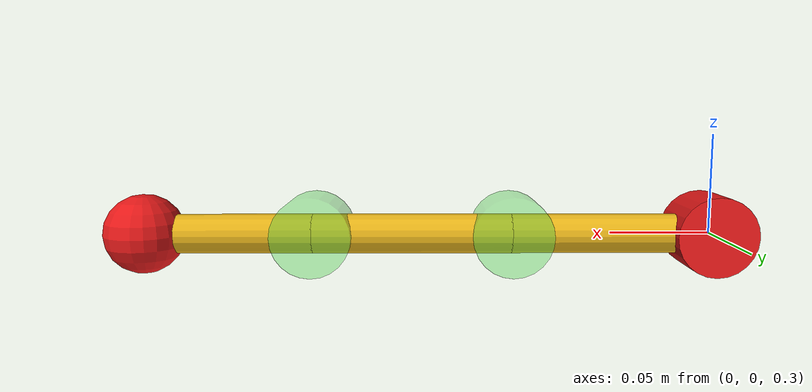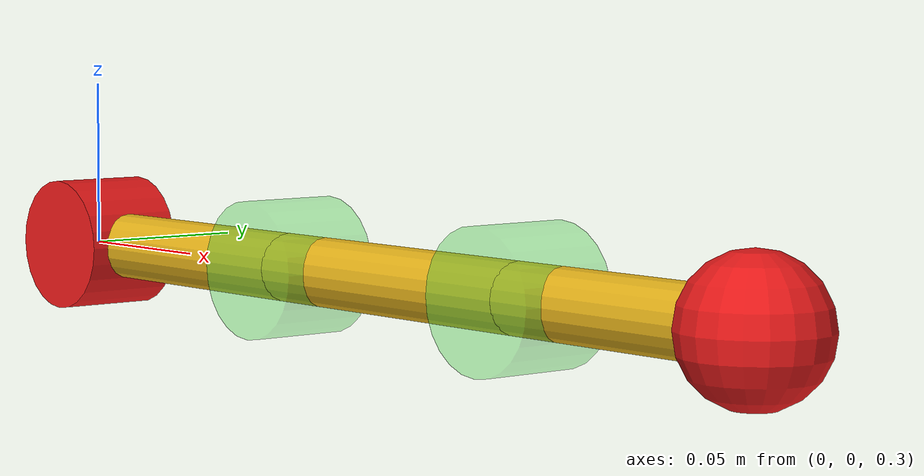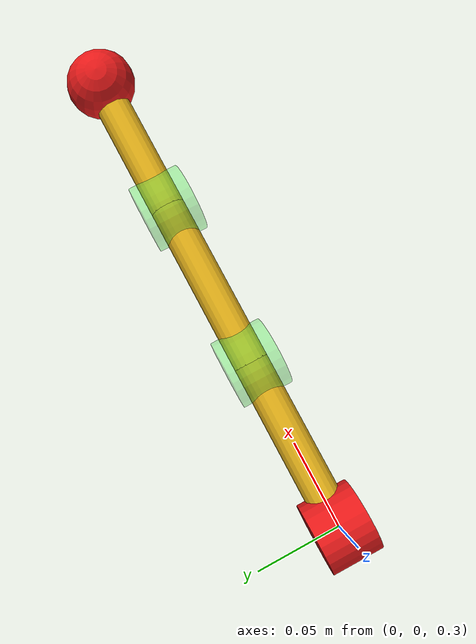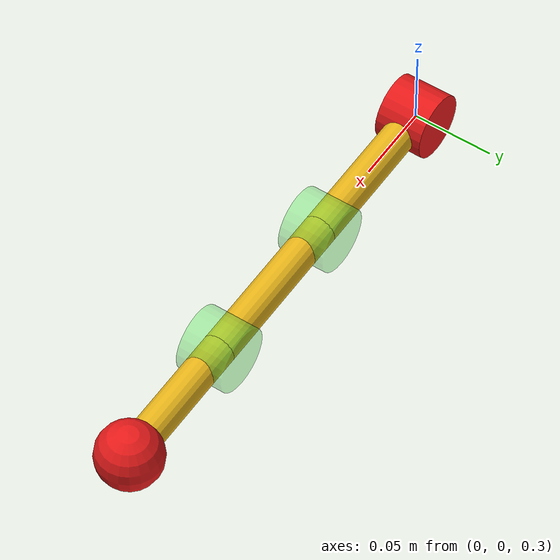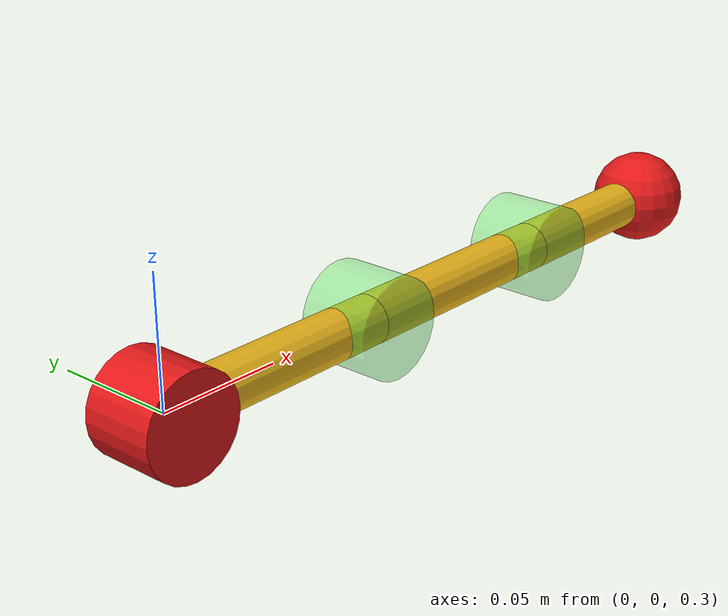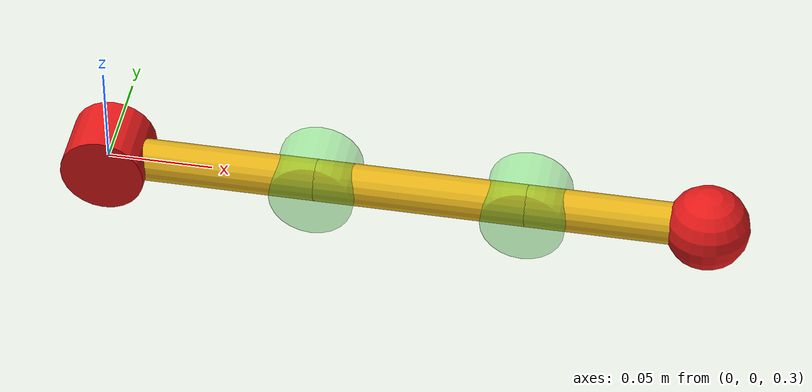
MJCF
<mujoco model="kitty_bank">
    <actuator>
        <!-- Physical limits of the actuator. -->
        <motor ctrllimited="true" ctrlrange="-40.0 40.0" joint="joint1" name="torq_j1"/>
        <motor ctrllimited="true" ctrlrange="-40.0 40.0" joint="joint2" name="torq_j2"/>
        <motor ctrllimited="true" ctrlrange="-40.0 40.0" joint="joint3" name="torq_j3"/>
    </actuator>

    <default>
        <geom rgba=".9 .7 .1 1" size="0.01"/>
    </default>

    <worldbody>
        <light diffuse=".5 .5 .5" pos="0 0 3" dir="0 0 -1"/>
        <geom type="plane" pos="0 0 -0.5" size="1 1 0.1" rgba="1 1 1 1"/>
        <body name="base" pos="0 0 0">
            <!-- robot view -->
            <camera mode="fixed" name="robotview" pos="1.0 0 0.4" quat="0.653 0.271 0.271 0.653"/>
            <inertial diaginertia="0 0 0" mass="0" pos="0 0 0"/>

            <!-- mount attached here -->
            <body name="link0" pos="0 0 0">
                <geom name="g1" type="cylinder" fromto="0.0 0.015 0.3 0.0 -0.015 0.3" size="0.02" rgba=".9 .1 .1 .9" euler="0 0 30"/>
                <geom type="capsule" fromto="0 0 0.3 0.1 0 0.3" />
                <joint name="joint1" pos="0 0 0.3" type="hinge" axis="0 1 0" limited="true" range="0 180"/>
                <body>
                    <geom type="capsule" fromto="0.1 0 0.3 0.2 0 0.3"/>
                    <geom name="g2" type="cylinder" fromto="0.1 0.015 0.3 0.1 -0.015 0.3" size="0.02" rgba=".3 .9 .3 .4"/>
                    <joint name="joint2" pos="0.1 0 0.3" type="hinge" axis="0 1 0" limited="true" range="0 180"/>
                    <body>
                        <geom type="capsule" fromto="0.2 0 0.3 0.27 0 0.3"/>
                        <geom name="g3" type="cylinder" fromto="0.2 0.015 0.3 0.2 -0.015 0.3" size="0.02" rgba=".3 .9 .3 .4"/>
                        <joint name="joint3" pos="0.2 0 0.3" type="hinge" axis="0 1 0" limited="true" range="0 180"/>
                        <geom type="sphere" pos="0.285 0 0.3" size="0.02" rgba=".9 .1 .1 .9"/>
                    </body>
                </body>
            </body>
        </body>
    </worldbody>
</mujoco>
